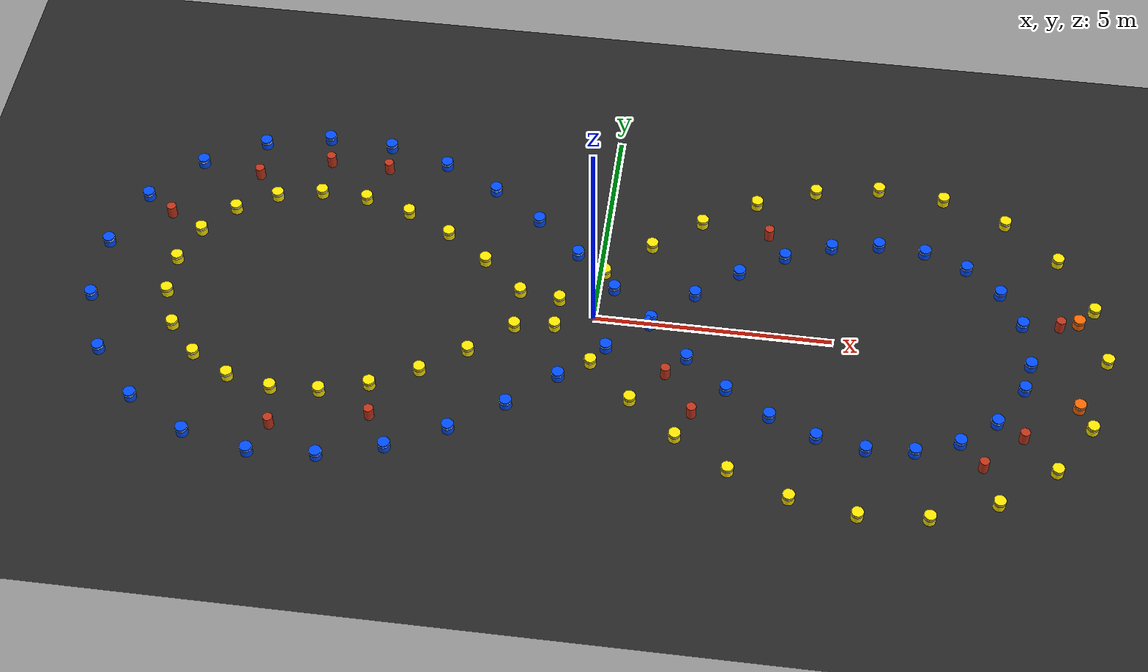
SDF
<?xml version="1.0" ?>
<sdf version="1.6">
  <world name="infinity_track">

    <!-- Lighting -->
    <light name="sun" type="directional">
      <cast_shadows>true</cast_shadows>
      <pose>0 0 10 0 0 0</pose>
      <diffuse>0.9 0.9 0.9 1</diffuse>
      <specular>0.3 0.3 0.3 1</specular>
      <direction>-0.5 0.2 -0.9</direction>
    </light>

    <!-- Ground (dark tarmac) -->
    <model name="ground_plane">
      <static>true</static>
      <link name="link">
        <collision name="collision">
          <geometry><plane><normal>0 0 1</normal><size>60 30</size></plane></geometry>
        </collision>
        <visual name="visual">
          <geometry><plane><normal>0 0 1</normal><size>60 30</size></plane></geometry>
          <material>
            <ambient>0.15 0.15 0.15 1</ambient>
            <diffuse>0.15 0.15 0.15 1</diffuse>
          </material>
        </visual>
      </link>
    </model>

    <!-- Physics -->
    <physics type="ode">
      <real_time_update_rate>1000</real_time_update_rate>
      <max_step_size>0.001</max_step_size>
      <real_time_factor>1</real_time_factor>
    </physics>

    <!-- Blue cones (left / inner boundary) -->
    <include>
      <name>blue_cone_000</name>
      <uri>model://blue_cone</uri>
      <static>true</static>
      <pose>9.1128 -0.1451 0 0 0 0</pose>
    </include>

    <include>
      <name>blue_cone_001</name>
      <uri>model://blue_cone</uri>
      <static>true</static>
      <pose>8.9336 0.8969 0 0 0 0</pose>
    </include>

    <include>
      <name>blue_cone_002</name>
      <uri>model://blue_cone</uri>
      <static>true</static>
      <pose>8.4578 1.6852 0 0 0 0</pose>
    </include>

    <include>
      <name>blue_cone_003</name>
      <uri>model://blue_cone</uri>
      <static>true</static>
      <pose>7.7309 2.2769 0 0 0 0</pose>
    </include>

    <include>
      <name>blue_cone_004</name>
      <uri>model://blue_cone</uri>
      <static>true</static>
      <pose>6.8332 2.6187 0 0 0 0</pose>
    </include>

    <include>
      <name>blue_cone_005</name>
      <uri>model://blue_cone</uri>
      <static>true</static>
      <pose>5.8471 2.6941 0 0 0 0</pose>
    </include>

    <include>
      <name>blue_cone_006</name>
      <uri>model://blue_cone</uri>
      <static>true</static>
      <pose>4.8416 2.5177 0 0 0 0</pose>
    </include>

    <include>
      <name>blue_cone_007</name>
      <uri>model://blue_cone</uri>
      <static>true</static>
      <pose>3.8629 2.1237 0 0 0 0</pose>
    </include>

    <include>
      <name>blue_cone_008</name>
      <uri>model://blue_cone</uri>
      <static>true</static>
      <pose>2.9328 1.5548 0 0 0 0</pose>
    </include>

    <include>
      <name>blue_cone_009</name>
      <uri>model://blue_cone</uri>
      <static>true</static>
      <pose>2.0509 0.8544 0 0 0 0</pose>
    </include>

    <include>
      <name>blue_cone_010</name>
      <uri>model://blue_cone</uri>
      <static>true</static>
      <pose>1.1997 0.0632 0 0 0 0</pose>
    </include>

    <include>
      <name>blue_cone_011</name>
      <uri>model://blue_cone</uri>
      <static>true</static>
      <pose>0.3500 -0.7812 0 0 0 0</pose>
    </include>

    <include>
      <name>blue_cone_012</name>
      <uri>model://blue_cone</uri>
      <static>true</static>
      <pose>-0.5348 -1.6406 0 0 0 0</pose>
    </include>

    <include>
      <name>blue_cone_013</name>
      <uri>model://blue_cone</uri>
      <static>true</static>
      <pose>-1.4930 -2.4725 0 0 0 0</pose>
    </include>

    <include>
      <name>blue_cone_014</name>
      <uri>model://blue_cone</uri>
      <static>true</static>
      <pose>-2.5583 -3.2243 0 0 0 0</pose>
    </include>

    <include>
      <name>blue_cone_015</name>
      <uri>model://blue_cone</uri>
      <static>true</static>
      <pose>-3.7515 -3.8304 0 0 0 0</pose>
    </include>

    <include>
      <name>blue_cone_016</name>
      <uri>model://blue_cone</uri>
      <static>true</static>
      <pose>-5.0689 -4.2118 0 0 0 0</pose>
    </include>

    <include>
      <name>blue_cone_017</name>
      <uri>model://blue_cone</uri>
      <static>true</static>
      <pose>-6.4699 -4.2846 0 0 0 0</pose>
    </include>

    <include>
      <name>blue_cone_018</name>
      <uri>model://blue_cone</uri>
      <static>true</static>
      <pose>-7.8674 -3.9761 0 0 0 0</pose>
    </include>

    <include>
      <name>blue_cone_019</name>
      <uri>model://blue_cone</uri>
      <static>true</static>
      <pose>-9.1297 -3.2518 0 0 0 0</pose>
    </include>

    <include>
      <name>blue_cone_020</name>
      <uri>model://blue_cone</uri>
      <static>true</static>
      <pose>-10.0989 -2.1416 0 0 0 0</pose>
    </include>

    <include>
      <name>blue_cone_021</name>
      <uri>model://blue_cone</uri>
      <static>true</static>
      <pose>-10.6296 -0.7542 0 0 0 0</pose>
    </include>

    <include>
      <name>blue_cone_022</name>
      <uri>model://blue_cone</uri>
      <static>true</static>
      <pose>-10.6331 0.7352 0 0 0 0</pose>
    </include>

    <include>
      <name>blue_cone_023</name>
      <uri>model://blue_cone</uri>
      <static>true</static>
      <pose>-10.1088 2.1252 0 0 0 0</pose>
    </include>

    <include>
      <name>blue_cone_024</name>
      <uri>model://blue_cone</uri>
      <static>true</static>
      <pose>-9.1443 3.2398 0 0 0 0</pose>
    </include>

    <include>
      <name>blue_cone_025</name>
      <uri>model://blue_cone</uri>
      <static>true</static>
      <pose>-7.8849 3.9695 0 0 0 0</pose>
    </include>

    <include>
      <name>blue_cone_026</name>
      <uri>model://blue_cone</uri>
      <static>true</static>
      <pose>-6.4881 4.2831 0 0 0 0</pose>
    </include>

    <include>
      <name>blue_cone_027</name>
      <uri>model://blue_cone</uri>
      <static>true</static>
      <pose>-5.0866 4.2149 0 0 0 0</pose>
    </include>

    <include>
      <name>blue_cone_028</name>
      <uri>model://blue_cone</uri>
      <static>true</static>
      <pose>-3.7677 3.8369 0 0 0 0</pose>
    </include>

    <include>
      <name>blue_cone_029</name>
      <uri>model://blue_cone</uri>
      <static>true</static>
      <pose>-2.5728 3.2332 0 0 0 0</pose>
    </include>

    <include>
      <name>blue_cone_030</name>
      <uri>model://blue_cone</uri>
      <static>true</static>
      <pose>-1.5060 2.4828 0 0 0 0</pose>
    </include>

    <include>
      <name>blue_cone_031</name>
      <uri>model://blue_cone</uri>
      <static>true</static>
      <pose>-0.5466 1.6516 0 0 0 0</pose>
    </include>

    <include>
      <name>blue_cone_032</name>
      <uri>model://blue_cone</uri>
      <static>true</static>
      <pose>0.3389 0.7922 0 0 0 0</pose>
    </include>

    <include>
      <name>blue_cone_033</name>
      <uri>model://blue_cone</uri>
      <static>true</static>
      <pose>1.1889 -0.0526 0 0 0 0</pose>
    </include>

    <include>
      <name>blue_cone_034</name>
      <uri>model://blue_cone</uri>
      <static>true</static>
      <pose>2.0398 -0.8447 0 0 0 0</pose>
    </include>

    <include>
      <name>blue_cone_035</name>
      <uri>model://blue_cone</uri>
      <static>true</static>
      <pose>2.9211 -1.5465 0 0 0 0</pose>
    </include>

    <include>
      <name>blue_cone_036</name>
      <uri>model://blue_cone</uri>
      <static>true</static>
      <pose>3.8506 -2.1174 0 0 0 0</pose>
    </include>

    <include>
      <name>blue_cone_037</name>
      <uri>model://blue_cone</uri>
      <static>true</static>
      <pose>4.8288 -2.5140 0 0 0 0</pose>
    </include>

    <include>
      <name>blue_cone_038</name>
      <uri>model://blue_cone</uri>
      <static>true</static>
      <pose>5.8342 -2.6934 0 0 0 0</pose>
    </include>

    <include>
      <name>blue_cone_039</name>
      <uri>model://blue_cone</uri>
      <static>true</static>
      <pose>6.8209 -2.6213 0 0 0 0</pose>
    </include>

    <include>
      <name>blue_cone_040</name>
      <uri>model://blue_cone</uri>
      <static>true</static>
      <pose>7.7202 -2.2830 0 0 0 0</pose>
    </include>

    <include>
      <name>blue_cone_041</name>
      <uri>model://blue_cone</uri>
      <static>true</static>
      <pose>8.4499 -1.6942 0 0 0 0</pose>
    </include>

    <include>
      <name>blue_cone_042</name>
      <uri>model://blue_cone</uri>
      <static>true</static>
      <pose>8.9927 -0.7791 0 0 0 0</pose>
    </include>

    <!-- Yellow cones (right / outer boundary) -->
    <include>
      <name>yellow_cone_000</name>
      <uri>model://yellow_cone</uri>
      <static>true</static>
      <pose>10.6862 0.1451 0 0 0 0</pose>
    </include>

    <include>
      <name>yellow_cone_001</name>
      <uri>model://yellow_cone</uri>
      <static>true</static>
      <pose>10.4298 1.4638 0 0 0 0</pose>
    </include>

    <include>
      <name>yellow_cone_002</name>
      <uri>model://yellow_cone</uri>
      <static>true</static>
      <pose>9.6671 2.7328 0 0 0 0</pose>
    </include>

    <include>
      <name>yellow_cone_003</name>
      <uri>model://yellow_cone</uri>
      <static>true</static>
      <pose>8.5333 3.6612 0 0 0 0</pose>
    </include>

    <include>
      <name>yellow_cone_004</name>
      <uri>model://yellow_cone</uri>
      <static>true</static>
      <pose>7.1854 4.1794 0 0 0 0</pose>
    </include>

    <include>
      <name>yellow_cone_005</name>
      <uri>model://yellow_cone</uri>
      <static>true</static>
      <pose>5.7723 4.2924 0 0 0 0</pose>
    </include>

    <include>
      <name>yellow_cone_006</name>
      <uri>model://yellow_cone</uri>
      <static>true</static>
      <pose>4.4047 4.0569 0 0 0 0</pose>
    </include>

    <include>
      <name>yellow_cone_007</name>
      <uri>model://yellow_cone</uri>
      <static>true</static>
      <pose>3.1461 3.5542 0 0 0 0</pose>
    </include>

    <include>
      <name>yellow_cone_008</name>
      <uri>model://yellow_cone</uri>
      <static>true</static>
      <pose>2.0174 2.8671 0 0 0 0</pose>
    </include>

    <include>
      <name>yellow_cone_009</name>
      <uri>model://yellow_cone</uri>
      <static>true</static>
      <pose>1.0086 2.0684 0 0 0 0</pose>
    </include>

    <include>
      <name>yellow_cone_010</name>
      <uri>model://yellow_cone</uri>
      <static>true</static>
      <pose>0.0913 1.2170 0 0 0 0</pose>
    </include>

    <include>
      <name>yellow_cone_011</name>
      <uri>model://yellow_cone</uri>
      <static>true</static>
      <pose>-0.7714 0.3601 0 0 0 0</pose>
    </include>

    <include>
      <name>yellow_cone_012</name>
      <uri>model://yellow_cone</uri>
      <static>true</static>
      <pose>-1.6176 -0.4626 0 0 0 0</pose>
    </include>

    <include>
      <name>yellow_cone_013</name>
      <uri>model://yellow_cone</uri>
      <static>true</static>
      <pose>-2.4809 -1.2139 0 0 0 0</pose>
    </include>

    <include>
      <name>yellow_cone_014</name>
      <uri>model://yellow_cone</uri>
      <static>true</static>
      <pose>-3.3854 -1.8547 0 0 0 0</pose>
    </include>

    <include>
      <name>yellow_cone_015</name>
      <uri>model://yellow_cone</uri>
      <static>true</static>
      <pose>-4.3407 -2.3428 0 0 0 0</pose>
    </include>

    <include>
      <name>yellow_cone_016</name>
      <uri>model://yellow_cone</uri>
      <static>true</static>
      <pose>-5.3368 -2.6344 0 0 0 0</pose>
    </include>

    <include>
      <name>yellow_cone_017</name>
      <uri>model://yellow_cone</uri>
      <static>true</static>
      <pose>-6.3400 -2.6898 0 0 0 0</pose>
    </include>

    <include>
      <name>yellow_cone_018</name>
      <uri>model://yellow_cone</uri>
      <static>true</static>
      <pose>-7.2923 -2.4831 0 0 0 0</pose>
    </include>

    <include>
      <name>yellow_cone_019</name>
      <uri>model://yellow_cone</uri>
      <static>true</static>
      <pose>-8.1163 -2.0137 0 0 0 0</pose>
    </include>

    <include>
      <name>yellow_cone_020</name>
      <uri>model://yellow_cone</uri>
      <static>true</static>
      <pose>-8.7284 -1.3159 0 0 0 0</pose>
    </include>

    <include>
      <name>yellow_cone_021</name>
      <uri>model://yellow_cone</uri>
      <static>true</static>
      <pose>-9.0566 -0.4613 0 0 0 0</pose>
    </include>

    <include>
      <name>yellow_cone_022</name>
      <uri>model://yellow_cone</uri>
      <static>true</static>
      <pose>-9.0587 0.4497 0 0 0 0</pose>
    </include>

    <include>
      <name>yellow_cone_023</name>
      <uri>model://yellow_cone</uri>
      <static>true</static>
      <pose>-8.7346 1.3057 0 0 0 0</pose>
    </include>

    <include>
      <name>yellow_cone_024</name>
      <uri>model://yellow_cone</uri>
      <static>true</static>
      <pose>-8.1257 2.0060 0 0 0 0</pose>
    </include>

    <include>
      <name>yellow_cone_025</name>
      <uri>model://yellow_cone</uri>
      <static>true</static>
      <pose>-7.3039 2.4787 0 0 0 0</pose>
    </include>

    <include>
      <name>yellow_cone_026</name>
      <uri>model://yellow_cone</uri>
      <static>true</static>
      <pose>-6.3528 2.6889 0 0 0 0</pose>
    </include>

    <include>
      <name>yellow_cone_027</name>
      <uri>model://yellow_cone</uri>
      <static>true</static>
      <pose>-5.3498 2.6367 0 0 0 0</pose>
    </include>

    <include>
      <name>yellow_cone_028</name>
      <uri>model://yellow_cone</uri>
      <static>true</static>
      <pose>-4.3533 2.3479 0 0 0 0</pose>
    </include>

    <include>
      <name>yellow_cone_029</name>
      <uri>model://yellow_cone</uri>
      <static>true</static>
      <pose>-3.3973 1.8620 0 0 0 0</pose>
    </include>

    <include>
      <name>yellow_cone_030</name>
      <uri>model://yellow_cone</uri>
      <static>true</static>
      <pose>-2.4922 1.2229 0 0 0 0</pose>
    </include>

    <include>
      <name>yellow_cone_031</name>
      <uri>model://yellow_cone</uri>
      <static>true</static>
      <pose>-1.6285 0.4729 0 0 0 0</pose>
    </include>

    <include>
      <name>yellow_cone_032</name>
      <uri>model://yellow_cone</uri>
      <static>true</static>
      <pose>-0.7823 -0.3492 0 0 0 0</pose>
    </include>

    <include>
      <name>yellow_cone_033</name>
      <uri>model://yellow_cone</uri>
      <static>true</static>
      <pose>0.0799 -1.2059 0 0 0 0</pose>
    </include>

    <include>
      <name>yellow_cone_034</name>
      <uri>model://yellow_cone</uri>
      <static>true</static>
      <pose>0.9963 -2.0576 0 0 0 0</pose>
    </include>

    <include>
      <name>yellow_cone_035</name>
      <uri>model://yellow_cone</uri>
      <static>true</static>
      <pose>2.0037 -2.8573 0 0 0 0</pose>
    </include>

    <include>
      <name>yellow_cone_036</name>
      <uri>model://yellow_cone</uri>
      <static>true</static>
      <pose>3.1307 -3.5463 0 0 0 0</pose>
    </include>

    <include>
      <name>yellow_cone_037</name>
      <uri>model://yellow_cone</uri>
      <static>true</static>
      <pose>4.3877 -4.0520 0 0 0 0</pose>
    </include>

    <include>
      <name>yellow_cone_038</name>
      <uri>model://yellow_cone</uri>
      <static>true</static>
      <pose>5.7542 -4.2914 0 0 0 0</pose>
    </include>

    <include>
      <name>yellow_cone_039</name>
      <uri>model://yellow_cone</uri>
      <static>true</static>
      <pose>7.1674 -4.1834 0 0 0 0</pose>
    </include>

    <include>
      <name>yellow_cone_040</name>
      <uri>model://yellow_cone</uri>
      <static>true</static>
      <pose>8.5169 -3.6706 0 0 0 0</pose>
    </include>

    <include>
      <name>yellow_cone_041</name>
      <uri>model://yellow_cone</uri>
      <static>true</static>
      <pose>9.6545 -2.7472 0 0 0 0</pose>
    </include>

    <include>
      <name>yellow_cone_042</name>
      <uri>model://yellow_cone</uri>
      <static>true</static>
      <pose>10.3597 -1.6106 0 0 0 0</pose>
    </include>

    <!-- Orange cones (start / finish gate) -->
    <include>
      <name>orange_cone_000</name>
      <uri>model://orange_cone</uri>
      <static>true</static>
      <pose>10.0995 1.1000 0 0 0 0</pose>
    </include>

    <include>
      <name>orange_cone_001</name>
      <uri>model://orange_cone</uri>
      <static>true</static>
      <pose>10.0995 -1.1000 0 0 0 0</pose>
    </include>

    <!-- Random obstacles (barrels) -->
    <model name="obstacle_0">
      <static>true</static>
      <pose>1.6486 -1.3081 0.15 0 0 0</pose>
      <link name="link">
        <collision name="col">
          <geometry><cylinder><radius>0.10</radius><length>0.30</length></cylinder></geometry>
        </collision>
        <visual name="vis">
          <geometry><cylinder><radius>0.10</radius><length>0.30</length></cylinder></geometry>
          <material>
            <ambient>0.75 0.20 0.10 1</ambient>
            <diffuse>0.75 0.20 0.10 1</diffuse>
          </material>
        </visual>
      </link>
    </model>

    <model name="obstacle_1">
      <static>true</static>
      <pose>2.2765 -2.2267 0.15 0 0 0</pose>
      <link name="link">
        <collision name="col">
          <geometry><cylinder><radius>0.10</radius><length>0.30</length></cylinder></geometry>
        </collision>
        <visual name="vis">
          <geometry><cylinder><radius>0.10</radius><length>0.30</length></cylinder></geometry>
          <material>
            <ambient>0.75 0.20 0.10 1</ambient>
            <diffuse>0.75 0.20 0.10 1</diffuse>
          </material>
        </visual>
      </link>
    </model>

    <model name="obstacle_2">
      <static>true</static>
      <pose>8.9876 -2.0073 0.15 0 0 0</pose>
      <link name="link">
        <collision name="col">
          <geometry><cylinder><radius>0.10</radius><length>0.30</length></cylinder></geometry>
        </collision>
        <visual name="vis">
          <geometry><cylinder><radius>0.10</radius><length>0.30</length></cylinder></geometry>
          <material>
            <ambient>0.75 0.20 0.10 1</ambient>
            <diffuse>0.75 0.20 0.10 1</diffuse>
          </material>
        </visual>
      </link>
    </model>

    <model name="obstacle_3">
      <static>true</static>
      <pose>8.1905 -2.8154 0.15 0 0 0</pose>
      <link name="link">
        <collision name="col">
          <geometry><cylinder><radius>0.10</radius><length>0.30</length></cylinder></geometry>
        </collision>
        <visual name="vis">
          <geometry><cylinder><radius>0.10</radius><length>0.30</length></cylinder></geometry>
          <material>
            <ambient>0.75 0.20 0.10 1</ambient>
            <diffuse>0.75 0.20 0.10 1</diffuse>
          </material>
        </visual>
      </link>
    </model>

    <model name="obstacle_4">
      <static>true</static>
      <pose>3.4762 2.7026 0.15 0 0 0</pose>
      <link name="link">
        <collision name="col">
          <geometry><cylinder><radius>0.10</radius><length>0.30</length></cylinder></geometry>
        </collision>
        <visual name="vis">
          <geometry><cylinder><radius>0.10</radius><length>0.30</length></cylinder></geometry>
          <material>
            <ambient>0.75 0.20 0.10 1</ambient>
            <diffuse>0.75 0.20 0.10 1</diffuse>
          </material>
        </visual>
      </link>
    </model>

    <model name="obstacle_5">
      <static>true</static>
      <pose>9.7090 0.9623 0.15 0 0 0</pose>
      <link name="link">
        <collision name="col">
          <geometry><cylinder><radius>0.10</radius><length>0.30</length></cylinder></geometry>
        </collision>
        <visual name="vis">
          <geometry><cylinder><radius>0.10</radius><length>0.30</length></cylinder></geometry>
          <material>
            <ambient>0.75 0.20 0.10 1</ambient>
            <diffuse>0.75 0.20 0.10 1</diffuse>
          </material>
        </visual>
      </link>
    </model>

    <model name="obstacle_6">
      <static>true</static>
      <pose>-5.0216 3.5650 0.15 0 0 0</pose>
      <link name="link">
        <collision name="col">
          <geometry><cylinder><radius>0.10</radius><length>0.30</length></cylinder></geometry>
        </collision>
        <visual name="vis">
          <geometry><cylinder><radius>0.10</radius><length>0.30</length></cylinder></geometry>
          <material>
            <ambient>0.75 0.20 0.10 1</ambient>
            <diffuse>0.75 0.20 0.10 1</diffuse>
          </material>
        </visual>
      </link>
    </model>

    <model name="obstacle_7">
      <static>true</static>
      <pose>-4.1988 -3.1032 0.15 0 0 0</pose>
      <link name="link">
        <collision name="col">
          <geometry><cylinder><radius>0.10</radius><length>0.30</length></cylinder></geometry>
        </collision>
        <visual name="vis">
          <geometry><cylinder><radius>0.10</radius><length>0.30</length></cylinder></geometry>
          <material>
            <ambient>0.75 0.20 0.10 1</ambient>
            <diffuse>0.75 0.20 0.10 1</diffuse>
          </material>
        </visual>
      </link>
    </model>

    <model name="obstacle_8">
      <static>true</static>
      <pose>-7.8225 3.0512 0.15 0 0 0</pose>
      <link name="link">
        <collision name="col">
          <geometry><cylinder><radius>0.10</radius><length>0.30</length></cylinder></geometry>
        </collision>
        <visual name="vis">
          <geometry><cylinder><radius>0.10</radius><length>0.30</length></cylinder></geometry>
          <material>
            <ambient>0.75 0.20 0.10 1</ambient>
            <diffuse>0.75 0.20 0.10 1</diffuse>
          </material>
        </visual>
      </link>
    </model>

    <model name="obstacle_9">
      <static>true</static>
      <pose>-6.3289 3.6084 0.15 0 0 0</pose>
      <link name="link">
        <collision name="col">
          <geometry><cylinder><radius>0.10</radius><length>0.30</length></cylinder></geometry>
        </collision>
        <visual name="vis">
          <geometry><cylinder><radius>0.10</radius><length>0.30</length></cylinder></geometry>
          <material>
            <ambient>0.75 0.20 0.10 1</ambient>
            <diffuse>0.75 0.20 0.10 1</diffuse>
          </material>
        </visual>
      </link>
    </model>

    <model name="obstacle_10">
      <static>true</static>
      <pose>-6.1712 -3.5743 0.15 0 0 0</pose>
      <link name="link">
        <collision name="col">
          <geometry><cylinder><radius>0.10</radius><length>0.30</length></cylinder></geometry>
        </collision>
        <visual name="vis">
          <geometry><cylinder><radius>0.10</radius><length>0.30</length></cylinder></geometry>
          <material>
            <ambient>0.75 0.20 0.10 1</ambient>
            <diffuse>0.75 0.20 0.10 1</diffuse>
          </material>
        </visual>
      </link>
    </model>

    <model name="obstacle_11">
      <static>true</static>
      <pose>-9.4864 1.7002 0.15 0 0 0</pose>
      <link name="link">
        <collision name="col">
          <geometry><cylinder><radius>0.10</radius><length>0.30</length></cylinder></geometry>
        </collision>
        <visual name="vis">
          <geometry><cylinder><radius>0.10</radius><length>0.30</length></cylinder></geometry>
          <material>
            <ambient>0.75 0.20 0.10 1</ambient>
            <diffuse>0.75 0.20 0.10 1</diffuse>
          </material>
        </visual>
      </link>
    </model>

  </world>
</sdf>

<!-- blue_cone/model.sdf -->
<sdf version="1.6">
  <model name="blue_cone">
    <static>true</static>
    <link name="link">
      <collision name="collision">
        <geometry>
          <cylinder><radius>0.125</radius><length>0.228</length></cylinder>
        </geometry>
        <surface>
          <friction><ode><mu>1.0</mu><mu2>1.0</mu2></ode></friction>
        </surface>
      </collision>
      <visual name="body">
        <pose>0 0 0.114 0 0 0</pose>
        <geometry>
          <cylinder><radius>0.125</radius><length>0.228</length></cylinder>
        </geometry>
        <material>
          <ambient>0.0 0.3 1.0 1</ambient>
          <diffuse>0.0 0.3 1.0 1</diffuse>
          <specular>0.1 0.1 0.1 1</specular>
        </material>
      </visual>
      <!-- White reflective stripe -->
      <visual name="stripe">
        <pose>0 0 0.17 0 0 0</pose>
        <geometry>
          <cylinder><radius>0.127</radius><length>0.03</length></cylinder>
        </geometry>
        <material>
          <ambient>1 1 1 1</ambient>
          <diffuse>1 1 1 1</diffuse>
        </material>
      </visual>
    </link>
  </model>
</sdf>

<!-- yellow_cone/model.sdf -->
<sdf version="1.6">
  <model name="yellow_cone">
    <static>true</static>
    <link name="link">
      <collision name="collision">
        <geometry>
          <cylinder><radius>0.125</radius><length>0.228</length></cylinder>
        </geometry>
        <surface>
          <friction><ode><mu>1.0</mu><mu2>1.0</mu2></ode></friction>
        </surface>
      </collision>
      <visual name="body">
        <pose>0 0 0.114 0 0 0</pose>
        <geometry>
          <cylinder><radius>0.125</radius><length>0.228</length></cylinder>
        </geometry>
        <material>
          <ambient>1.0 0.9 0.0 1</ambient>
          <diffuse>1.0 0.9 0.0 1</diffuse>
          <specular>0.1 0.1 0.1 1</specular>
        </material>
      </visual>
      <visual name="stripe">
        <pose>0 0 0.17 0 0 0</pose>
        <geometry>
          <cylinder><radius>0.127</radius><length>0.03</length></cylinder>
        </geometry>
        <material>
          <ambient>1 1 1 1</ambient>
          <diffuse>1 1 1 1</diffuse>
        </material>
      </visual>
    </link>
  </model>
</sdf>

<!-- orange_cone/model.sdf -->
<sdf version="1.6">
  <model name="orange_cone">
    <static>true</static>
    <link name="link">
      <collision name="collision">
        <geometry>
          <cylinder><radius>0.125</radius><length>0.228</length></cylinder>
        </geometry>
        <surface>
          <friction><ode><mu>1.0</mu><mu2>1.0</mu2></ode></friction>
        </surface>
      </collision>
      <visual name="body">
        <pose>0 0 0.114 0 0 0</pose>
        <geometry>
          <cylinder><radius>0.125</radius><length>0.228</length></cylinder>
        </geometry>
        <material>
          <ambient>1.0 0.4 0.0 1</ambient>
          <diffuse>1.0 0.4 0.0 1</diffuse>
          <specular>0.1 0.1 0.1 1</specular>
        </material>
      </visual>
      <visual name="stripe">
        <pose>0 0 0.17 0 0 0</pose>
        <geometry>
          <cylinder><radius>0.127</radius><length>0.03</length></cylinder>
        </geometry>
        <material>
          <ambient>1 1 1 1</ambient>
          <diffuse>1 1 1 1</diffuse>
        </material>
      </visual>
    </link>
  </model>
</sdf>
